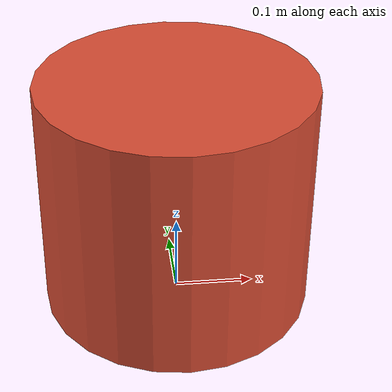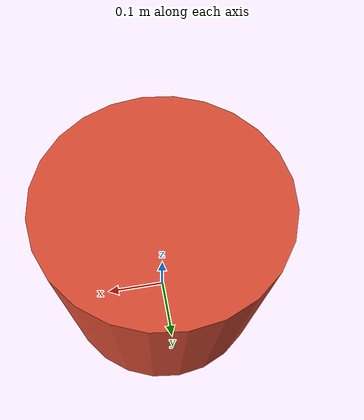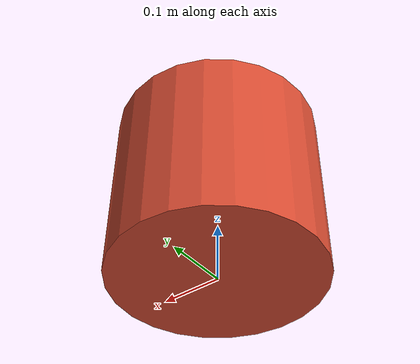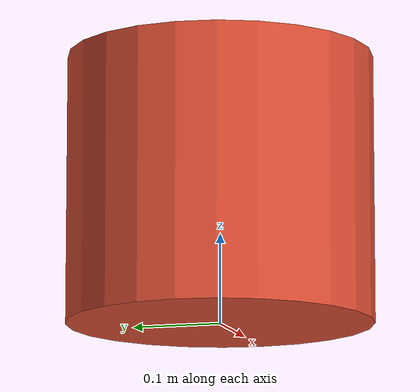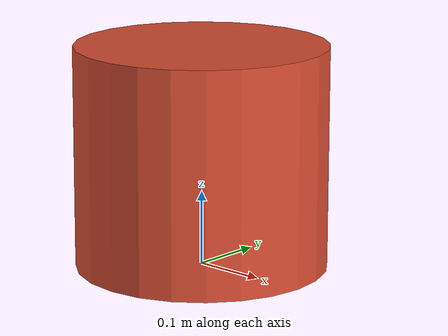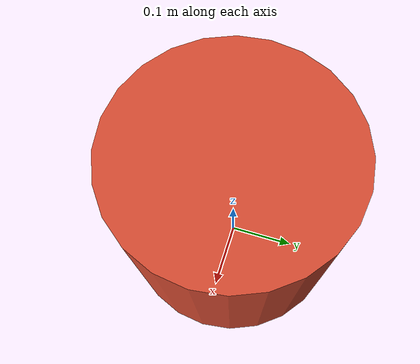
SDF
<?xml version="1.0"?>
<sdf version="1.7">
  <model name="frustum_obstacle">
    <static>true</static>
    <link name="link">
      <pose>0 0 0.15 0 0 0</pose>
      <collision name="collision">
        <geometry>
          <cylinder>
            <radius>0.17</radius>
            <length>0.3</length>
          </cylinder>
        </geometry>
      </collision>
      <visual name="visual">
        <geometry>
          <cylinder>
            <radius>0.17</radius>
            <length>0.3</length>
          </cylinder>
        </geometry>
        <material>
          <ambient>0.85 0.3 0.2 1</ambient>
          <diffuse>0.85 0.3 0.2 1</diffuse>
          <specular>0.1 0.1 0.1 1</specular>
        </material>
      </visual>
    </link>
  </model>
</sdf>
